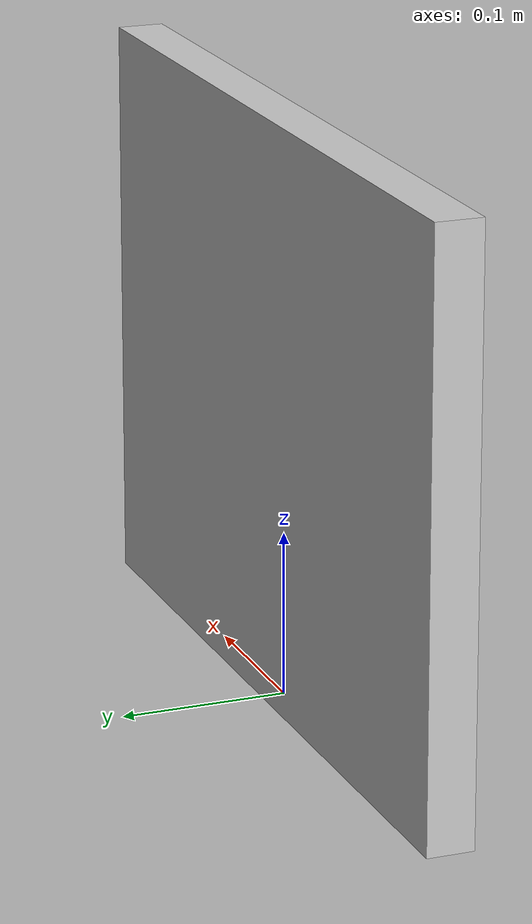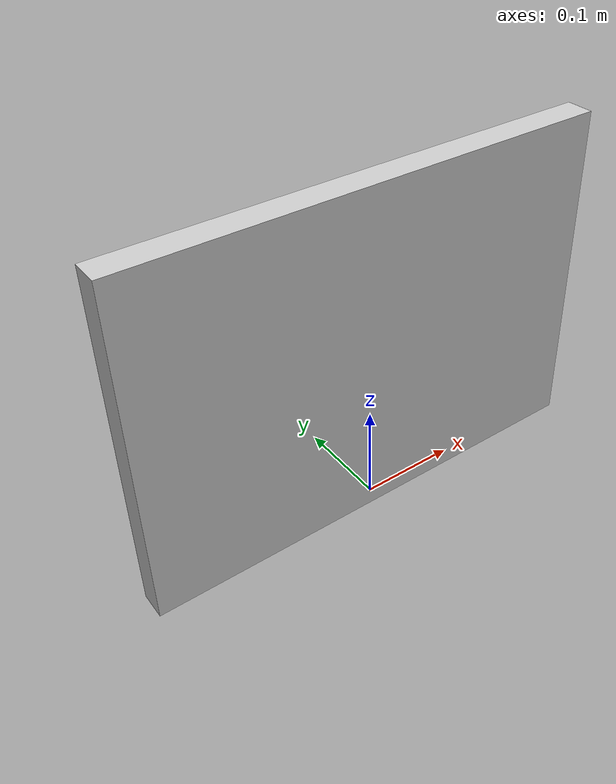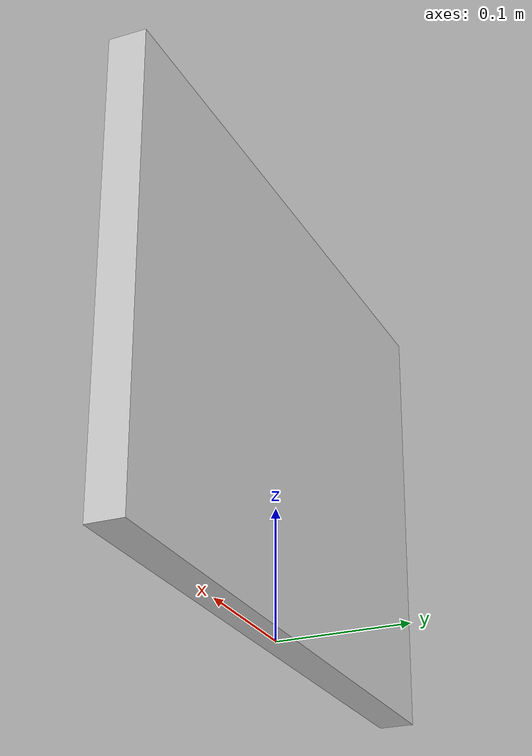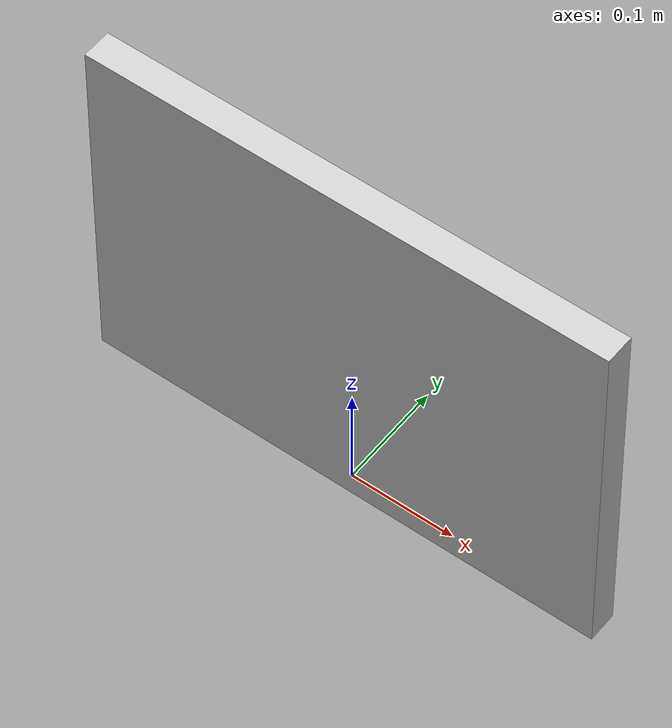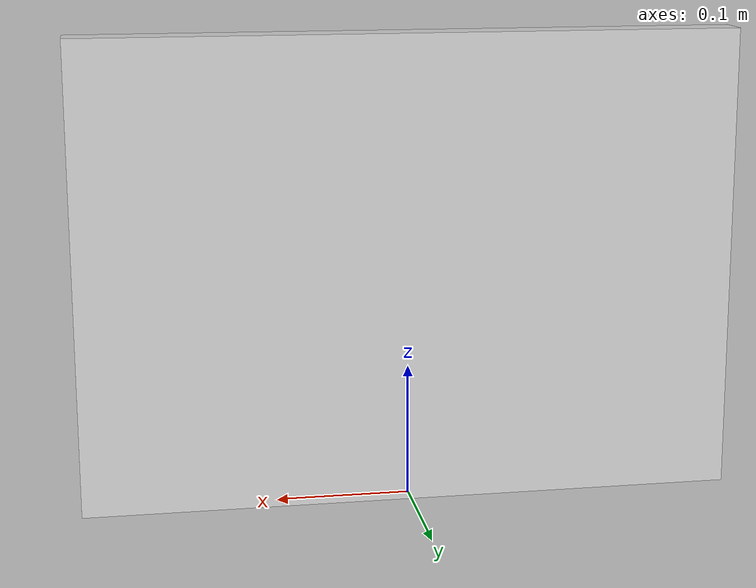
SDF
<?xml version="1.0" ?>
<sdf version="1.5">
  <model name="cp">
    <static>true</static>
    <link name="link">
      <visual name="visual">
        <geometry>
          <mesh>
            <uri>model://aic_cp/meshes/cp.dae</uri>
            <scale>0.7 0.7 0.7</scale>
          </mesh>
        </geometry>
      </visual>

      <collision name="collision">
        <geometry>
          <mesh>
            <uri>model://aic_cp/meshes/cp.dae</uri>
            <scale>0.7 0.7 0.7</scale>
          </mesh>
        </geometry>
      </collision>
    </link>
  </model>
</sdf>
